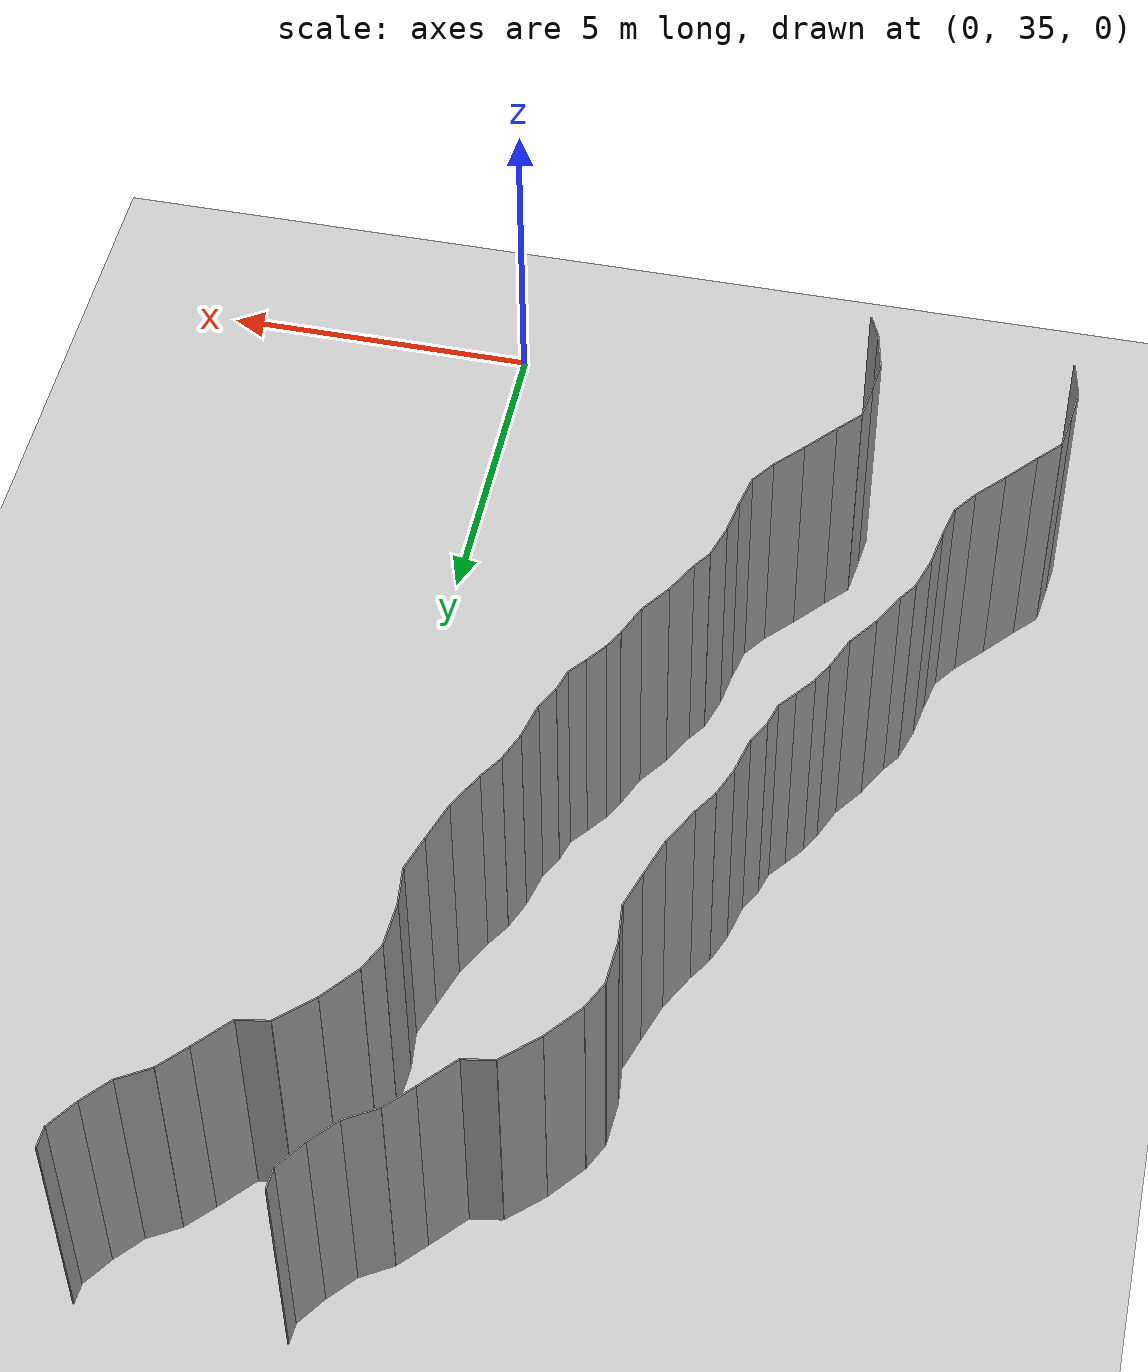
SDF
<sdf version="1.6">
 <world name="default">
  <model name="ground_plane">
   <static>1</static>
   <link name="link">
    <collision name="collision">
     <geometry><plane><normal>0 0 1</normal><size>200 200</size></plane></geometry>
     <surface><friction><ode><mu>100</mu><mu2>50</mu2></ode></friction></surface>
    </collision>
    <visual name="visual">
     <cast_shadows>0</cast_shadows>
     <geometry><plane><normal>0 0 1</normal><size>200 200</size></plane></geometry>
     <material>
      <script><uri>file://media/materials/scripts/gazebo.material</uri><name>Gazebo/Grey</name></script>
     </material>
    </visual>
   </link>
   <pose>0 100 0 0 -0 0</pose>
  </model>
  <model name="wall_149">
   <static>1</static>
   <pose>-5.979179297973749 36.96900486577157 2 0 0 0.4159915385988741</pose>
   <link name="link">
    <collision name="collision"><geometry><box><size>0.02 0.427078219296 4</size></box></geometry></collision>
    <visual name="visual">
     <material>
      <script><name>Gazebo/Grey</name><uri>file://media/materials/scripts/gazebo.material</uri></script>
     </material>
     <geometry><box><size>0.02 0.427078219296 4</size></box></geometry>
    </visual>
   </link>
  </model>
  <model name="wall_150">
   <static>1</static>
   <pose>-9.131056214632892 37.47505483958127 2 0 0 0.2080236249196579</pose>
   <link name="link">
    <collision name="collision"><geometry><box><size>0.02 0.635137558829 4</size></box></geometry></collision>
    <visual name="visual">
     <material>
      <script><name>Gazebo/Grey</name><uri>file://media/materials/scripts/gazebo.material</uri></script>
     </material>
     <geometry><box><size>0.02 0.635137558829 4</size></box></geometry>
    </visual>
   </link>
  </model>
  <model name="wall_151">
   <static>1</static>
   <pose>-6.131056214632892 37.47505483958127 2 0 0 0.2080236249196579</pose>
   <link name="link">
    <collision name="collision"><geometry><box><size>0.02 0.635137558829 4</size></box></geometry></collision>
    <visual name="visual">
     <material>
      <script><name>Gazebo/Grey</name><uri>file://media/materials/scripts/gazebo.material</uri></script>
     </material>
     <geometry><box><size>0.02 0.635137558829 4</size></box></geometry>
    </visual>
   </link>
  </model>
  <model name="wall_152">
   <static>1</static>
   <pose>-9.171380394786064 38.03064599079478 2 0 0 -0.10280256384518421</pose>
   <link name="link">
    <collision name="collision"><geometry><box><size>0.02 0.492336983265 4</size></box></geometry></collision>
    <visual name="visual">
     <material>
      <script><name>Gazebo/Grey</name><uri>file://media/materials/scripts/gazebo.material</uri></script>
     </material>
     <geometry><box><size>0.02 0.492336983265 4</size></box></geometry>
    </visual>
   </link>
  </model>
  <model name="wall_153">
   <static>1</static>
   <pose>-6.171380394786064 38.03064599079478 2 0 0 -0.10280256384518421</pose>
   <link name="link">
    <collision name="collision"><geometry><box><size>0.02 0.492336983265 4</size></box></geometry></collision>
    <visual name="visual">
     <material>
      <script><name>Gazebo/Grey</name><uri>file://media/materials/scripts/gazebo.material</uri></script>
     </material>
     <geometry><box><size>0.02 0.492336983265 4</size></box></geometry>
    </visual>
   </link>
  </model>
  <model name="wall_154">
   <static>1</static>
   <pose>-9.11048127869415 38.561826333170686 2 0 0 -0.12383216033396566</pose>
   <link name="link">
    <collision name="collision"><geometry><box><size>0.02 0.577041654203 4</size></box></geometry></collision>
    <visual name="visual">
     <material>
      <script><name>Gazebo/Grey</name><uri>file://media/materials/scripts/gazebo.material</uri></script>
     </material>
     <geometry><box><size>0.02 0.577041654203 4</size></box></geometry>
    </visual>
   </link>
  </model>
  <model name="wall_155">
   <static>1</static>
   <pose>-6.1104812786941505 38.561826333170686 2 0 0 -0.12383216033396566</pose>
   <link name="link">
    <collision name="collision"><geometry><box><size>0.02 0.577041654203 4</size></box></geometry></collision>
    <visual name="visual">
     <material>
      <script><name>Gazebo/Grey</name><uri>file://media/materials/scripts/gazebo.material</uri></script>
     </material>
     <geometry><box><size>0.02 0.577041654203 4</size></box></geometry>
    </visual>
   </link>
  </model>
  <model name="wall_156">
   <static>1</static>
   <pose>-8.914213789656506 39.02518373247903 2 0 0 -0.7368238327762444</pose>
   <link name="link">
    <collision name="collision"><geometry><box><size>0.02 0.478110572103 4</size></box></geometry></collision>
    <visual name="visual">
     <material>
      <script><name>Gazebo/Grey</name><uri>file://media/materials/scripts/gazebo.material</uri></script>
     </material>
     <geometry><box><size>0.02 0.478110572103 4</size></box></geometry>
    </visual>
   </link>
  </model>
  <model name="wall_157">
   <static>1</static>
   <pose>-5.914213789656506 39.02518373247903 2 0 0 -0.7368238327762444</pose>
   <link name="link">
    <collision name="collision"><geometry><box><size>0.02 0.478110572103 4</size></box></geometry></collision>
    <visual name="visual">
     <material>
      <script><name>Gazebo/Grey</name><uri>file://media/materials/scripts/gazebo.material</uri></script>
     </material>
     <geometry><box><size>0.02 0.478110572103 4</size></box></geometry>
    </visual>
   </link>
  </model>
  <model name="wall_158">
   <static>1</static>
   <pose>-8.548970149805543 39.43939077893873 2 0 0 -0.7118552003022429</pose>
   <link name="link">
    <collision name="collision"><geometry><box><size>0.02 0.626456444039 4</size></box></geometry></collision>
    <visual name="visual">
     <material>
      <script><name>Gazebo/Grey</name><uri>file://media/materials/scripts/gazebo.material</uri></script>
     </material>
     <geometry><box><size>0.02 0.626456444039 4</size></box></geometry>
    </visual>
   </link>
  </model>
  <model name="wall_159">
   <static>1</static>
   <pose>-5.548970149805543 39.43939077893873 2 0 0 -0.7118552003022429</pose>
   <link name="link">
    <collision name="collision"><geometry><box><size>0.02 0.626456444039 4</size></box></geometry></collision>
    <visual name="visual">
     <material>
      <script><name>Gazebo/Grey</name><uri>file://media/materials/scripts/gazebo.material</uri></script>
     </material>
     <geometry><box><size>0.02 0.626456444039 4</size></box></geometry>
    </visual>
   </link>
  </model>
  <model name="wall_160">
   <static>1</static>
   <pose>-8.149164593170578 39.89132015985429 2 0 0 -0.7376841268463646</pose>
   <link name="link">
    <collision name="collision"><geometry><box><size>0.02 0.580432598309 4</size></box></geometry></collision>
    <visual name="visual">
     <material>
      <script><name>Gazebo/Grey</name><uri>file://media/materials/scripts/gazebo.material</uri></script>
     </material>
     <geometry><box><size>0.02 0.580432598309 4</size></box></geometry>
    </visual>
   </link>
  </model>
  <model name="wall_161">
   <static>1</static>
   <pose>-5.149164593170578 39.89132015985429 2 0 0 -0.7376841268463646</pose>
   <link name="link">
    <collision name="collision"><geometry><box><size>0.02 0.580432598309 4</size></box></geometry></collision>
    <visual name="visual">
     <material>
      <script><name>Gazebo/Grey</name><uri>file://media/materials/scripts/gazebo.material</uri></script>
     </material>
     <geometry><box><size>0.02 0.580432598309 4</size></box></geometry>
    </visual>
   </link>
  </model>
  <model name="wall_162">
   <static>1</static>
   <pose>-7.827800638543118 40.288589717877514 2 0 0 -0.6048938978768921</pose>
   <link name="link">
    <collision name="collision"><geometry><box><size>0.02 0.443738542993 4</size></box></geometry></collision>
    <visual name="visual">
     <material>
      <script><name>Gazebo/Grey</name><uri>file://media/materials/scripts/gazebo.material</uri></script>
     </material>
     <geometry><box><size>0.02 0.443738542993 4</size></box></geometry>
    </visual>
   </link>
  </model>
  <model name="wall_163">
   <static>1</static>
   <pose>-4.827800638543118 40.288589717877514 2 0 0 -0.6048938978768921</pose>
   <link name="link">
    <collision name="collision"><geometry><box><size>0.02 0.443738542993 4</size></box></geometry></collision>
    <visual name="visual">
     <material>
      <script><name>Gazebo/Grey</name><uri>file://media/materials/scripts/gazebo.material</uri></script>
     </material>
     <geometry><box><size>0.02 0.443738542993 4</size></box></geometry>
    </visual>
   </link>
  </model>
  <model name="wall_164">
   <static>1</static>
   <pose>-7.648196920069109 40.72734320345725 2 0 0 -0.20556887808972787</pose>
   <link name="link">
    <collision name="collision"><geometry><box><size>0.02 0.52352716595 4</size></box></geometry></collision>
    <visual name="visual">
     <material>
      <script><name>Gazebo/Grey</name><uri>file://media/materials/scripts/gazebo.material</uri></script>
     </material>
     <geometry><box><size>0.02 0.52352716595 4</size></box></geometry>
    </visual>
   </link>
  </model>
  <model name="wall_165">
   <static>1</static>
   <pose>-4.648196920069109 40.72734320345725 2 0 0 -0.20556887808972787</pose>
   <link name="link">
    <collision name="collision"><geometry><box><size>0.02 0.52352716595 4</size></box></geometry></collision>
    <visual name="visual">
     <material>
      <script><name>Gazebo/Grey</name><uri>file://media/materials/scripts/gazebo.material</uri></script>
     </material>
     <geometry><box><size>0.02 0.52352716595 4</size></box></geometry>
    </visual>
   </link>
  </model>
  <model name="wall_166">
   <static>1</static>
   <pose>-7.552300342590266 41.24962586747833 2 0 0 -0.15828668212222424</pose>
   <link name="link">
    <collision name="collision"><geometry><box><size>0.02 0.538796621414 4</size></box></geometry></collision>
    <visual name="visual">
     <material>
      <script><name>Gazebo/Grey</name><uri>file://media/materials/scripts/gazebo.material</uri></script>
     </material>
     <geometry><box><size>0.02 0.538796621414 4</size></box></geometry>
    </visual>
   </link>
  </model>
  <model name="wall_167">
   <static>1</static>
   <pose>-4.552300342590266 41.24962586747833 2 0 0 -0.15828668212222424</pose>
   <link name="link">
    <collision name="collision"><geometry><box><size>0.02 0.538796621414 4</size></box></geometry></collision>
    <visual name="visual">
     <material>
      <script><name>Gazebo/Grey</name><uri>file://media/materials/scripts/gazebo.material</uri></script>
     </material>
     <geometry><box><size>0.02 0.538796621414 4</size></box></geometry>
    </visual>
   </link>
  </model>
  <model name="wall_168">
   <static>1</static>
   <pose>-7.433508682545071 41.770310494104365 2 0 0 -0.2912085563377487</pose>
   <link name="link">
    <collision name="collision"><geometry><box><size>0.02 0.531693831372 4</size></box></geometry></collision>
    <visual name="visual">
     <material>
      <script><name>Gazebo/Grey</name><uri>file://media/materials/scripts/gazebo.material</uri></script>
     </material>
     <geometry><box><size>0.02 0.531693831372 4</size></box></geometry>
    </visual>
   </link>
  </model>
  <model name="wall_169">
   <static>1</static>
   <pose>-4.433508682545071 41.770310494104365 2 0 0 -0.2912085563377487</pose>
   <link name="link">
    <collision name="collision"><geometry><box><size>0.02 0.531693831372 4</size></box></geometry></collision>
    <visual name="visual">
     <material>
      <script><name>Gazebo/Grey</name><uri>file://media/materials/scripts/gazebo.material</uri></script>
     </material>
     <geometry><box><size>0.02 0.531693831372 4</size></box></geometry>
    </visual>
   </link>
  </model>
  <model name="wall_170">
   <static>1</static>
   <pose>-7.264470347153866 42.161225048192236 2 0 0 -0.5974471137034559</pose>
   <link name="link">
    <collision name="collision"><geometry><box><size>0.02 0.329619389587 4</size></box></geometry></collision>
    <visual name="visual">
     <material>
      <script><name>Gazebo/Grey</name><uri>file://media/materials/scripts/gazebo.material</uri></script>
     </material>
     <geometry><box><size>0.02 0.329619389587 4</size></box></geometry>
    </visual>
   </link>
  </model>
  <model name="wall_171">
   <static>1</static>
   <pose>-4.264470347153866 42.161225048192236 2 0 0 -0.5974471137034559</pose>
   <link name="link">
    <collision name="collision"><geometry><box><size>0.02 0.329619389587 4</size></box></geometry></collision>
    <visual name="visual">
     <material>
      <script><name>Gazebo/Grey</name><uri>file://media/materials/scripts/gazebo.material</uri></script>
     </material>
     <geometry><box><size>0.02 0.329619389587 4</size></box></geometry>
    </visual>
   </link>
  </model>
  <model name="wall_172">
   <static>1</static>
   <pose>-7.04034059674151 42.54745386321498 2 0 0 -0.4840281098946346</pose>
   <link name="link">
    <collision name="collision"><geometry><box><size>0.02 0.564818835341 4</size></box></geometry></collision>
    <visual name="visual">
     <material>
      <script><name>Gazebo/Grey</name><uri>file://media/materials/scripts/gazebo.material</uri></script>
     </material>
     <geometry><box><size>0.02 0.564818835341 4</size></box></geometry>
    </visual>
   </link>
  </model>
  <model name="wall_173">
   <static>1</static>
   <pose>-4.04034059674151 42.54745386321498 2 0 0 -0.4840281098946346</pose>
   <link name="link">
    <collision name="collision"><geometry><box><size>0.02 0.564818835341 4</size></box></geometry></collision>
    <visual name="visual">
     <material>
      <script><name>Gazebo/Grey</name><uri>file://media/materials/scripts/gazebo.material</uri></script>
     </material>
     <geometry><box><size>0.02 0.564818835341 4</size></box></geometry>
    </visual>
   </link>
  </model>
  <model name="wall_174">
   <static>1</static>
   <pose>-6.7506951603720395 43.022615968640096 2 0 0 -0.6124853690434964</pose>
   <link name="link">
    <collision name="collision"><geometry><box><size>0.02 0.550446719737 4</size></box></geometry></collision>
    <visual name="visual">
     <material>
      <script><name>Gazebo/Grey</name><uri>file://media/materials/scripts/gazebo.material</uri></script>
     </material>
     <geometry><box><size>0.02 0.550446719737 4</size></box></geometry>
    </visual>
   </link>
  </model>
  <model name="wall_175">
   <static>1</static>
   <pose>-3.7506951603720395 43.022615968640096 2 0 0 -0.6124853690434964</pose>
   <link name="link">
    <collision name="collision"><geometry><box><size>0.02 0.550446719737 4</size></box></geometry></collision>
    <visual name="visual">
     <material>
      <script><name>Gazebo/Grey</name><uri>file://media/materials/scripts/gazebo.material</uri></script>
     </material>
     <geometry><box><size>0.02 0.550446719737 4</size></box></geometry>
    </visual>
   </link>
  </model>
  <model name="wall_176">
   <static>1</static>
   <pose>-6.490587359567906 43.49816214567361 2 0 0 -0.3864839981105636</pose>
   <link name="link">
    <collision name="collision"><geometry><box><size>0.02 0.540577882444 4</size></box></geometry></collision>
    <visual name="visual">
     <material>
      <script><name>Gazebo/Grey</name><uri>file://media/materials/scripts/gazebo.material</uri></script>
     </material>
     <geometry><box><size>0.02 0.540577882444 4</size></box></geometry>
    </visual>
   </link>
  </model>
  <model name="wall_177">
   <static>1</static>
   <pose>-3.490587359567906 43.49816214567361 2 0 0 -0.3864839981105636</pose>
   <link name="link">
    <collision name="collision"><geometry><box><size>0.02 0.540577882444 4</size></box></geometry></collision>
    <visual name="visual">
     <material>
      <script><name>Gazebo/Grey</name><uri>file://media/materials/scripts/gazebo.material</uri></script>
     </material>
     <geometry><box><size>0.02 0.540577882444 4</size></box></geometry>
    </visual>
   </link>
  </model>
  <model name="wall_178">
   <static>1</static>
   <pose>-6.311145624531562 43.892193521175884 2 0 0 -0.4949931482614089</pose>
   <link name="link">
    <collision name="collision"><geometry><box><size>0.02 0.326553412714 4</size></box></geometry></collision>
    <visual name="visual">
     <material>
      <script><name>Gazebo/Grey</name><uri>file://media/materials/scripts/gazebo.material</uri></script>
     </material>
     <geometry><box><size>0.02 0.326553412714 4</size></box></geometry>
    </visual>
   </link>
  </model>
  <model name="wall_179">
   <static>1</static>
   <pose>-3.3111456245315622 43.892193521175884 2 0 0 -0.4949931482614089</pose>
   <link name="link">
    <collision name="collision"><geometry><box><size>0.02 0.326553412714 4</size></box></geometry></collision>
    <visual name="visual">
     <material>
      <script><name>Gazebo/Grey</name><uri>file://media/materials/scripts/gazebo.material</uri></script>
     </material>
     <geometry><box><size>0.02 0.326553412714 4</size></box></geometry>
    </visual>
   </link>
  </model>
  <model name="wall_180">
   <static>1</static>
   <pose>-6.120470499973042 44.18647099392856 2 0 0 -0.6442044640024973</pose>
   <link name="link">
    <collision name="collision"><geometry><box><size>0.02 0.37669517776 4</size></box></geometry></collision>
    <visual name="visual">
     <material>
      <script><name>Gazebo/Grey</name><uri>file://media/materials/scripts/gazebo.material</uri></script>
     </material>
     <geometry><box><size>0.02 0.37669517776 4</size></box></geometry>
    </visual>
   </link>
  </model>
  <model name="wall_181">
   <static>1</static>
   <pose>-3.1204704999730417 44.18647099392856 2 0 0 -0.6442044640024973</pose>
   <link name="link">
    <collision name="collision"><geometry><box><size>0.02 0.37669517776 4</size></box></geometry></collision>
    <visual name="visual">
     <material>
      <script><name>Gazebo/Grey</name><uri>file://media/materials/scripts/gazebo.material</uri></script>
     </material>
     <geometry><box><size>0.02 0.37669517776 4</size></box></geometry>
    </visual>
   </link>
  </model>
  <model name="wall_182">
   <static>1</static>
   <pose>-5.906101744254042 44.466590942503395 2 0 0 -0.6635177012830329</pose>
   <link name="link">
    <collision name="collision"><geometry><box><size>0.02 0.328805208001 4</size></box></geometry></collision>
    <visual name="visual">
     <material>
      <script><name>Gazebo/Grey</name><uri>file://media/materials/scripts/gazebo.material</uri></script>
     </material>
     <geometry><box><size>0.02 0.328805208001 4</size></box></geometry>
    </visual>
   </link>
  </model>
  <model name="wall_183">
   <static>1</static>
   <pose>-2.906101744254042 44.466590942503395 2 0 0 -0.6635177012830329</pose>
   <link name="link">
    <collision name="collision"><geometry><box><size>0.02 0.328805208001 4</size></box></geometry></collision>
    <visual name="visual">
     <material>
      <script><name>Gazebo/Grey</name><uri>file://media/materials/scripts/gazebo.material</uri></script>
     </material>
     <geometry><box><size>0.02 0.328805208001 4</size></box></geometry>
    </visual>
   </link>
  </model>
  <model name="wall_184">
   <static>1</static>
   <pose>-5.757033972021159 44.76903496472349 2 0 0 -0.2697624537408498</pose>
   <link name="link">
    <collision name="collision"><geometry><box><size>0.02 0.358822330452 4</size></box></geometry></collision>
    <visual name="visual">
     <material>
      <script><name>Gazebo/Grey</name><uri>file://media/materials/scripts/gazebo.material</uri></script>
     </material>
     <geometry><box><size>0.02 0.358822330452 4</size></box></geometry>
    </visual>
   </link>
  </model>
  <model name="wall_185">
   <static>1</static>
   <pose>-2.7570339720211594 44.76903496472349 2 0 0 -0.2697624537408498</pose>
   <link name="link">
    <collision name="collision"><geometry><box><size>0.02 0.358822330452 4</size></box></geometry></collision>
    <visual name="visual">
     <material>
      <script><name>Gazebo/Grey</name><uri>file://media/materials/scripts/gazebo.material</uri></script>
     </material>
     <geometry><box><size>0.02 0.358822330452 4</size></box></geometry>
    </visual>
   </link>
  </model>
  <model name="wall_186">
   <static>1</static>
   <pose>-5.620872254589887 45.11252148713143 2 0 0 -0.47792564535939364</pose>
   <link name="link">
    <collision name="collision"><geometry><box><size>0.02 0.384174166911 4</size></box></geometry></collision>
    <visual name="visual">
     <material>
      <script><name>Gazebo/Grey</name><uri>file://media/materials/scripts/gazebo.material</uri></script>
     </material>
     <geometry><box><size>0.02 0.384174166911 4</size></box></geometry>
    </visual>
   </link>
  </model>
  <model name="wall_187">
   <static>1</static>
   <pose>-2.6208722545898873 45.11252148713143 2 0 0 -0.47792564535939364</pose>
   <link name="link">
    <collision name="collision"><geometry><box><size>0.02 0.384174166911 4</size></box></geometry></collision>
    <visual name="visual">
     <material>
      <script><name>Gazebo/Grey</name><uri>file://media/materials/scripts/gazebo.material</uri></script>
     </material>
     <geometry><box><size>0.02 0.384174166911 4</size></box></geometry>
    </visual>
   </link>
  </model>
  <model name="wall_188">
   <static>1</static>
   <pose>-5.469660660429941 45.56058210755665 2 0 0 -0.2227773246384746</pose>
   <link name="link">
    <collision name="collision"><geometry><box><size>0.02 0.569056189542 4</size></box></geometry></collision>
    <visual name="visual">
     <material>
      <script><name>Gazebo/Grey</name><uri>file://media/materials/scripts/gazebo.material</uri></script>
     </material>
     <geometry><box><size>0.02 0.569056189542 4</size></box></geometry>
    </visual>
   </link>
  </model>
  <model name="wall_189">
   <static>1</static>
   <pose>-2.469660660429941 45.56058210755665 2 0 0 -0.2227773246384746</pose>
   <link name="link">
    <collision name="collision"><geometry><box><size>0.02 0.569056189542 4</size></box></geometry></collision>
    <visual name="visual">
     <material>
      <script><name>Gazebo/Grey</name><uri>file://media/materials/scripts/gazebo.material</uri></script>
     </material>
     <geometry><box><size>0.02 0.569056189542 4</size></box></geometry>
    </visual>
   </link>
  </model>
  <model name="wall_190">
   <static>1</static>
   <pose>-5.320135114966773 46.06162426282928 2 0 0 -0.3698332059143045</pose>
   <link name="link">
    <collision name="collision"><geometry><box><size>0.02 0.479511789793 4</size></box></geometry></collision>
    <visual name="visual">
     <material>
      <script><name>Gazebo/Grey</name><uri>file://media/materials/scripts/gazebo.material</uri></script>
     </material>
     <geometry><box><size>0.02 0.479511789793 4</size></box></geometry>
    </visual>
   </link>
  </model>
  <model name="wall_191">
   <static>1</static>
   <pose>-2.3201351149667726 46.06162426282928 2 0 0 -0.3698332059143045</pose>
   <link name="link">
    <collision name="collision"><geometry><box><size>0.02 0.479511789793 4</size></box></geometry></collision>
    <visual name="visual">
     <material>
      <script><name>Gazebo/Grey</name><uri>file://media/materials/scripts/gazebo.material</uri></script>
     </material>
     <geometry><box><size>0.02 0.479511789793 4</size></box></geometry>
    </visual>
   </link>
  </model>
  <model name="wall_192">
   <static>1</static>
   <pose>-5.122020769789004 46.464341055922056 2 0 0 -0.5564697421745126</pose>
   <link name="link">
    <collision name="collision"><geometry><box><size>0.02 0.422014066802 4</size></box></geometry></collision>
    <visual name="visual">
     <material>
      <script><name>Gazebo/Grey</name><uri>file://media/materials/scripts/gazebo.material</uri></script>
     </material>
     <geometry><box><size>0.02 0.422014066802 4</size></box></geometry>
    </visual>
   </link>
  </model>
  <model name="wall_193">
   <static>1</static>
   <pose>-2.122020769789004 46.464341055922056 2 0 0 -0.5564697421745126</pose>
   <link name="link">
    <collision name="collision"><geometry><box><size>0.02 0.422014066802 4</size></box></geometry></collision>
    <visual name="visual">
     <material>
      <script><name>Gazebo/Grey</name><uri>file://media/materials/scripts/gazebo.material</uri></script>
     </material>
     <geometry><box><size>0.02 0.422014066802 4</size></box></geometry>
    </visual>
   </link>
  </model>
  <model name="wall_194">
   <static>1</static>
   <pose>-4.864316123485951 46.930981442156245 2 0 0 -0.4706302101429472</pose>
   <link name="link">
    <collision name="collision"><geometry><box><size>0.02 0.645068122224 4</size></box></geometry></collision>
    <visual name="visual">
     <material>
      <script><name>Gazebo/Grey</name><uri>file://media/materials/scripts/gazebo.material</uri></script>
     </material>
     <geometry><box><size>0.02 0.645068122224 4</size></box></geometry>
    </visual>
   </link>
  </model>
  <model name="wall_195">
   <static>1</static>
   <pose>-1.8643161234859509 46.930981442156245 2 0 0 -0.4706302101429472</pose>
   <link name="link">
    <collision name="collision"><geometry><box><size>0.02 0.645068122224 4</size></box></geometry></collision>
    <visual name="visual">
     <material>
      <script><name>Gazebo/Grey</name><uri>file://media/materials/scripts/gazebo.material</uri></script>
     </material>
     <geometry><box><size>0.02 0.645068122224 4</size></box></geometry>
    </visual>
   </link>
  </model>
  <model name="wall_196">
   <static>1</static>
   <pose>-4.61848907269115 47.526216955020686 2 0 0 -0.3129103261134495</pose>
   <link name="link">
    <collision name="collision"><geometry><box><size>0.02 0.646947635382 4</size></box></geometry></collision>
    <visual name="visual">
     <material>
      <script><name>Gazebo/Grey</name><uri>file://media/materials/scripts/gazebo.material</uri></script>
     </material>
     <geometry><box><size>0.02 0.646947635382 4</size></box></geometry>
    </visual>
   </link>
  </model>
  <model name="wall_197">
   <static>1</static>
   <pose>-1.6184890726911503 47.526216955020686 2 0 0 -0.3129103261134495</pose>
   <link name="link">
    <collision name="collision"><geometry><box><size>0.02 0.646947635382 4</size></box></geometry></collision>
    <visual name="visual">
     <material>
      <script><name>Gazebo/Grey</name><uri>file://media/materials/scripts/gazebo.material</uri></script>
     </material>
     <geometry><box><size>0.02 0.646947635382 4</size></box></geometry>
    </visual>
   </link>
  </model>
  <model name="wall_198">
   <static>1</static>
   <pose>-4.435833033722881 48.10089253096504 2 0 0 -0.3017661036761744</pose>
   <link name="link">
    <collision name="collision"><geometry><box><size>0.02 0.559081346266 4</size></box></geometry></collision>
    <visual name="visual">
     <material>
      <script><name>Gazebo/Grey</name><uri>file://media/materials/scripts/gazebo.material</uri></script>
     </material>
     <geometry><box><size>0.02 0.559081346266 4</size></box></geometry>
    </visual>
   </link>
  </model>
  <model name="wall_199">
   <static>1</static>
   <pose>-1.435833033722881 48.10089253096504 2 0 0 -0.3017661036761744</pose>
   <link name="link">
    <collision name="collision"><geometry><box><size>0.02 0.559081346266 4</size></box></geometry></collision>
    <visual name="visual">
     <material>
      <script><name>Gazebo/Grey</name><uri>file://media/materials/scripts/gazebo.material</uri></script>
     </material>
     <geometry><box><size>0.02 0.559081346266 4</size></box></geometry>
    </visual>
   </link>
  </model>
  <model name="wall_200">
   <static>1</static>
   <pose>-4.3864769518491515 48.66479100927554 2 0 0 0.1130730619668743</pose>
   <link name="link">
    <collision name="collision"><geometry><box><size>0.02 0.597796271636 4</size></box></geometry></collision>
    <visual name="visual">
     <material>
      <script><name>Gazebo/Grey</name><uri>file://media/materials/scripts/gazebo.material</uri></script>
     </material>
     <geometry><box><size>0.02 0.597796271636 4</size></box></geometry>
    </visual>
   </link>
  </model>
  <model name="wall_201">
   <static>1</static>
   <pose>-1.3864769518491515 48.66479100927554 2 0 0 0.1130730619668743</pose>
   <link name="link">
    <collision name="collision"><geometry><box><size>0.02 0.597796271636 4</size></box></geometry></collision>
    <visual name="visual">
     <material>
      <script><name>Gazebo/Grey</name><uri>file://media/materials/scripts/gazebo.material</uri></script>
     </material>
     <geometry><box><size>0.02 0.597796271636 4</size></box></geometry>
    </visual>
   </link>
  </model>
  <model name="wall_202">
   <static>1</static>
   <pose>-4.402650907831215 49.30497331862219 2 0 0 -0.05109697581495343</pose>
   <link name="link">
    <collision name="collision"><geometry><box><size>0.02 0.687282862906 4</size></box></geometry></collision>
    <visual name="visual">
     <material>
      <script><name>Gazebo/Grey</name><uri>file://media/materials/scripts/gazebo.material</uri></script>
     </material>
     <geometry><box><size>0.02 0.687282862906 4</size></box></geometry>
    </visual>
   </link>
  </model>
  <model name="wall_203">
   <static>1</static>
   <pose>-1.402650907831215 49.30497331862219 2 0 0 -0.05109697581495343</pose>
   <link name="link">
    <collision name="collision"><geometry><box><size>0.02 0.687282862906 4</size></box></geometry></collision>
    <visual name="visual">
     <material>
      <script><name>Gazebo/Grey</name><uri>file://media/materials/scripts/gazebo.material</uri></script>
     </material>
     <geometry><box><size>0.02 0.687282862906 4</size></box></geometry>
    </visual>
   </link>
  </model>
  <model name="wall_204">
   <static>1</static>
   <pose>-4.287551000306271 49.85873071010968 2 0 0 -0.4338355014345837</pose>
   <link name="link">
    <collision name="collision"><geometry><box><size>0.02 0.464125446087 4</size></box></geometry></collision>
    <visual name="visual">
     <material>
      <script><name>Gazebo/Grey</name><uri>file://media/materials/scripts/gazebo.material</uri></script>
     </material>
     <geometry><box><size>0.02 0.464125446087 4</size></box></geometry>
    </visual>
   </link>
  </model>
  <model name="wall_205">
   <static>1</static>
   <pose>-1.2875510003062711 49.85873071010968 2 0 0 -0.4338355014345837</pose>
   <link name="link">
    <collision name="collision"><geometry><box><size>0.02 0.464125446087 4</size></box></geometry></collision>
    <visual name="visual">
     <material>
      <script><name>Gazebo/Grey</name><uri>file://media/materials/scripts/gazebo.material</uri></script>
     </material>
     <geometry><box><size>0.02 0.464125446087 4</size></box></geometry>
    </visual>
   </link>
  </model>
  <model name="wall_206">
   <static>1</static>
   <pose>-3.9757653388895102 50.341109271761965 2 0 0 -0.6674890516709581</pose>
   <link name="link">
    <collision name="collision"><geometry><box><size>0.02 0.692186269984 4</size></box></geometry></collision>
    <visual name="visual">
     <material>
      <script><name>Gazebo/Grey</name><uri>file://media/materials/scripts/gazebo.material</uri></script>
     </material>
     <geometry><box><size>0.02 0.692186269984 4</size></box></geometry>
    </visual>
   </link>
  </model>
  <model name="wall_207">
   <static>1</static>
   <pose>-0.9757653388895102 50.341109271761965 2 0 0 -0.6674890516709581</pose>
   <link name="link">
    <collision name="collision"><geometry><box><size>0.02 0.692186269984 4</size></box></geometry></collision>
    <visual name="visual">
     <material>
      <script><name>Gazebo/Grey</name><uri>file://media/materials/scripts/gazebo.material</uri></script>
     </material>
     <geometry><box><size>0.02 0.692186269984 4</size></box></geometry>
    </visual>
   </link>
  </model>
  <model name="wall_208">
   <static>1</static>
   <pose>-3.5085970023041586 50.84995581981303 2 0 0 -0.8178355752003874</pose>
   <link name="link">
    <collision name="collision"><geometry><box><size>0.02 0.693277921764 4</size></box></geometry></collision>
    <visual name="visual">
     <material>
      <script><name>Gazebo/Grey</name><uri>file://media/materials/scripts/gazebo.material</uri></script>
     </material>
     <geometry><box><size>0.02 0.693277921764 4</size></box></geometry>
    </visual>
   </link>
  </model>
  <model name="wall_209">
   <static>1</static>
   <pose>-0.5085970023041586 50.84995581981303 2 0 0 -0.8178355752003874</pose>
   <link name="link">
    <collision name="collision"><geometry><box><size>0.02 0.693277921764 4</size></box></geometry></collision>
    <visual name="visual">
     <material>
      <script><name>Gazebo/Grey</name><uri>file://media/materials/scripts/gazebo.material</uri></script>
     </material>
     <geometry><box><size>0.02 0.693277921764 4</size></box></geometry>
    </visual>
   </link>
  </model>
  <model name="wall_210">
   <static>1</static>
   <pose>-3.020719736101749 51.12753190553931 2 0 0 -1.399913618190715</pose>
   <link name="link">
    <collision name="collision"><geometry><box><size>0.02 0.476837277044 4</size></box></geometry></collision>
    <visual name="visual">
     <material>
      <script><name>Gazebo/Grey</name><uri>file://media/materials/scripts/gazebo.material</uri></script>
     </material>
     <geometry><box><size>0.02 0.476837277044 4</size></box></geometry>
    </visual>
   </link>
  </model>
  <model name="wall_211">
   <static>1</static>
   <pose>-0.020719736101749042 51.12753190553931 2 0 0 -1.399913618190715</pose>
   <link name="link">
    <collision name="collision"><geometry><box><size>0.02 0.476837277044 4</size></box></geometry></collision>
    <visual name="visual">
     <material>
      <script><name>Gazebo/Grey</name><uri>file://media/materials/scripts/gazebo.material</uri></script>
     </material>
     <geometry><box><size>0.02 0.476837277044 4</size></box></geometry>
    </visual>
   </link>
  </model>
  <model name="wall_212">
   <static>1</static>
   <pose>-2.5588528954107854 51.42869056492435 2 0 0 -0.7163965050382034</pose>
   <link name="link">
    <collision name="collision"><geometry><box><size>0.02 0.691124372124 4</size></box></geometry></collision>
    <visual name="visual">
     <material>
      <script><name>Gazebo/Grey</name><uri>file://media/materials/scripts/gazebo.material</uri></script>
     </material>
     <geometry><box><size>0.02 0.691124372124 4</size></box></geometry>
    </visual>
   </link>
  </model>
  <model name="wall_213">
   <static>1</static>
   <pose>0.4411471045892146 51.42869056492435 2 0 0 -0.7163965050382034</pose>
   <link name="link">
    <collision name="collision"><geometry><box><size>0.02 0.691124372124 4</size></box></geometry></collision>
    <visual name="visual">
     <material>
      <script><name>Gazebo/Grey</name><uri>file://media/materials/scripts/gazebo.material</uri></script>
     </material>
     <geometry><box><size>0.02 0.691124372124 4</size></box></geometry>
    </visual>
   </link>
  </model>
  <model name="wall_214">
   <static>1</static>
   <pose>-2.152331351547786 51.8869851670088 2 0 0 -0.737516080211435</pose>
   <link name="link">
    <collision name="collision"><geometry><box><size>0.02 0.534167222365 4</size></box></geometry></collision>
    <visual name="visual">
     <material>
      <script><name>Gazebo/Grey</name><uri>file://media/materials/scripts/gazebo.material</uri></script>
     </material>
     <geometry><box><size>0.02 0.534167222365 4</size></box></geometry>
    </visual>
   </link>
  </model>
  <model name="wall_215">
   <static>1</static>
   <pose>0.8476686484522138 51.8869851670088 2 0 0 -0.737516080211435</pose>
   <link name="link">
    <collision name="collision"><geometry><box><size>0.02 0.534167222365 4</size></box></geometry></collision>
    <visual name="visual">
     <material>
      <script><name>Gazebo/Grey</name><uri>file://media/materials/scripts/gazebo.material</uri></script>
     </material>
     <geometry><box><size>0.02 0.534167222365 4</size></box></geometry>
    </visual>
   </link>
  </model>
  <model name="wall_216">
   <static>1</static>
   <pose>-1.740844670199862 52.22608632101286 2 0 0 -1.0231468846703655</pose>
   <link name="link">
    <collision name="collision"><geometry><box><size>0.02 0.543216835833 4</size></box></geometry></collision>
    <visual name="visual">
     <material>
      <script><name>Gazebo/Grey</name><uri>file://media/materials/scripts/gazebo.material</uri></script>
     </material>
     <geometry><box><size>0.02 0.543216835833 4</size></box></geometry>
    </visual>
   </link>
  </model>
  <model name="wall_217">
   <static>1</static>
   <pose>1.259155329800138 52.22608632101286 2 0 0 -1.0231468846703655</pose>
   <link name="link">
    <collision name="collision"><geometry><box><size>0.02 0.543216835833 4</size></box></geometry></collision>
    <visual name="visual">
     <material>
      <script><name>Gazebo/Grey</name><uri>file://media/materials/scripts/gazebo.material</uri></script>
     </material>
     <geometry><box><size>0.02 0.543216835833 4</size></box></geometry>
    </visual>
   </link>
  </model>
  <model name="wall_218">
   <static>1</static>
   <pose>-1.3363208486222762 52.57110458162716 2 0 0 -0.7032973595321285</pose>
   <link name="link">
    <collision name="collision"><geometry><box><size>0.02 0.53387437093 4</size></box></geometry></collision>
    <visual name="visual">
     <material>
      <script><name>Gazebo/Grey</name><uri>file://media/materials/scripts/gazebo.material</uri></script>
     </material>
     <geometry><box><size>0.02 0.53387437093 4</size></box></geometry>
    </visual>
   </link>
  </model>
  <model name="wall_219">
   <static>1</static>
   <pose>1.6636791513777238 52.57110458162716 2 0 0 -0.7032973595321285</pose>
   <link name="link">
    <collision name="collision"><geometry><box><size>0.02 0.53387437093 4</size></box></geometry></collision>
    <visual name="visual">
     <material>
      <script><name>Gazebo/Grey</name><uri>file://media/materials/scripts/gazebo.material</uri></script>
     </material>
     <geometry><box><size>0.02 0.53387437093 4</size></box></geometry>
    </visual>
   </link>
  </model>
  <model name="wall_220">
   <static>1</static>
   <pose>-1.0150955986897967 52.997188788472755 2 0 0 -0.5888183709305331</pose>
   <link name="link">
    <collision name="collision"><geometry><box><size>0.02 0.535084640142 4</size></box></geometry></collision>
    <visual name="visual">
     <material>
      <script><name>Gazebo/Grey</name><uri>file://media/materials/scripts/gazebo.material</uri></script>
     </material>
     <geometry><box><size>0.02 0.535084640142 4</size></box></geometry>
    </visual>
   </link>
  </model>
  <model name="wall_221">
   <static>1</static>
   <pose>1.9849044013102033 52.997188788472755 2 0 0 -0.5888183709305331</pose>
   <link name="link">
    <collision name="collision"><geometry><box><size>0.02 0.535084640142 4</size></box></geometry></collision>
    <visual name="visual">
     <material>
      <script><name>Gazebo/Grey</name><uri>file://media/materials/scripts/gazebo.material</uri></script>
     </material>
     <geometry><box><size>0.02 0.535084640142 4</size></box></geometry>
    </visual>
   </link>
  </model>
  <model name="wall_222">
   <static>1</static>
   <pose>-0.858044892124584 53.37741880134415 2 0 0 -0.05360175823940649</pose>
   <link name="link">
    <collision name="collision"><geometry><box><size>0.02 0.315938731501 4</size></box></geometry></collision>
    <visual name="visual">
     <material>
      <script><name>Gazebo/Grey</name><uri>file://media/materials/scripts/gazebo.material</uri></script>
     </material>
     <geometry><box><size>0.02 0.315938731501 4</size></box></geometry>
    </visual>
   </link>
  </model>
  <model name="wall_223">
   <static>1</static>
   <pose>2.141955107875416 53.37741880134415 2 0 0 -0.05360175823940649</pose>
   <link name="link">
    <collision name="collision"><geometry><box><size>0.02 0.315938731501 4</size></box></geometry></collision>
    <visual name="visual">
     <material>
      <script><name>Gazebo/Grey</name><uri>file://media/materials/scripts/gazebo.material</uri></script>
     </material>
     <geometry><box><size>0.02 0.315938731501 4</size></box></geometry>
    </visual>
   </link>
  </model>
 </world>
</sdf>
